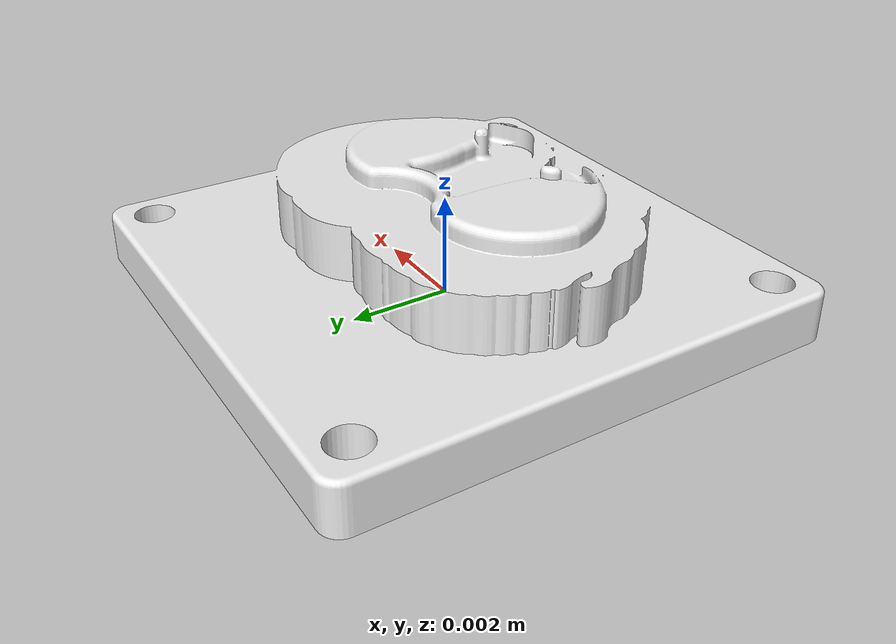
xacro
<?xml version="1.0" ?>
<robot name="brain_slice" xmlns:xacro="http://www.ros.org/wiki/xacro">

    <link name="brain_slice_base_link">
        <inertial>
        <origin rpy="0 0 0" xyz="0 0 0"/>
        <mass value="0.058579061972031825"/>
        <inertia ixx="1.2e-05" ixy="-0.0" ixz="-0.0" iyy="2.4e-05" iyz="0.0" izz="1.2e-05"/>
        </inertial>
        <visual>
        <origin rpy="0 0 0" xyz="0 0 0"/>
        <geometry>
            <mesh filename="package://micro_resector_description/meshes/samples/brain_slice.stl" scale="0.002 0.002 0.002"/>
        </geometry>
        <material name="white"/>
        </visual>
    </link>
    <gazebo reference="brain_slice_base_link">
        <mu1>0.2</mu1>
        <mu2>0.2</mu2>
        <material>Gazebo/White</material>
    </gazebo>

</robot>
